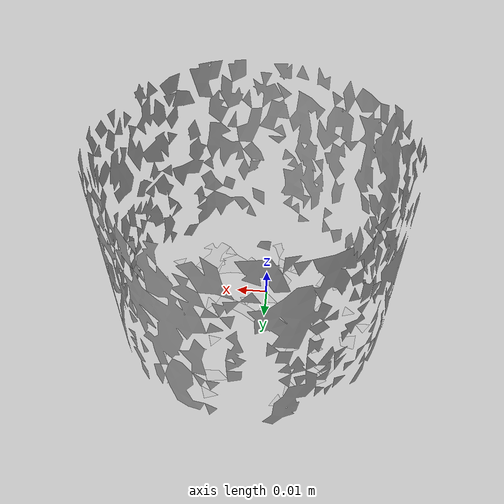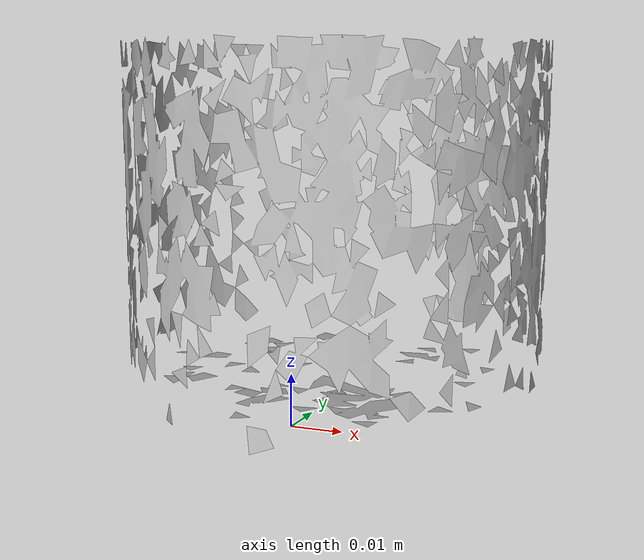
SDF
<?xml version="1.0" ?>
<sdf version="1.4">
  <model name='ycb_065-h_cups'>
    <link name='body'>
      <inertial>
        <mass>0.017</mass>
        <pose>0.00253584131889 0.0148085562138 0.0359343652012 0 0 0</pose>
        <inertia>
          <ixx>2.18790819254e-05</ixx>
          <ixy>2.30147039343e-08</ixy>
          <ixz>1.29471132969e-08</ixz>
          <iyy>2.19072129345e-05</iyy>
          <iyz>-1.0091338676e-07</iyz>
          <izz>2.34372741785e-05</izz>
        </inertia>
      </inertial>
      <visual name='ycb_065-h_cups_visual'>
        <pose>0 0 0 0 0 0</pose>
        <geometry>
          <mesh>
            <uri>model://ycb_065-h_cups/meshes/textured.dae</uri>
          </mesh>
        </geometry>
      </visual>
      <collision name='ycb_065-h_cups_collision'>
        <pose>0 0 0 0 0 0</pose>
        <geometry>
          <mesh>
            <uri>model://ycb_065-h_cups/meshes/nontextured.stl</uri>
          </mesh>
        </geometry>
        <max_contacts>10</max_contacts>
      </collision>
    </link>
  </model>
</sdf>
